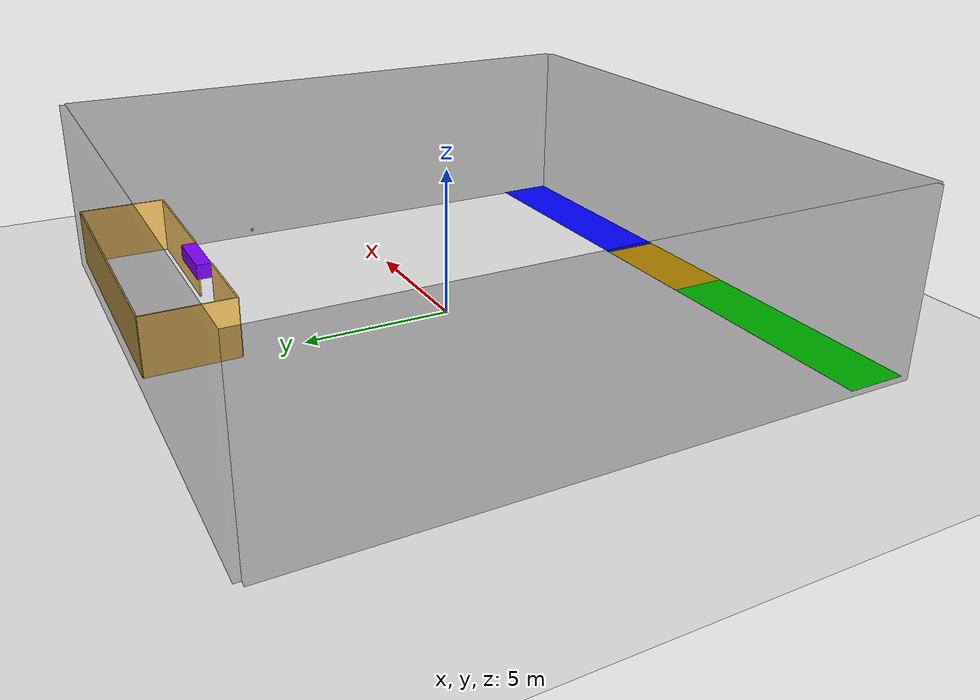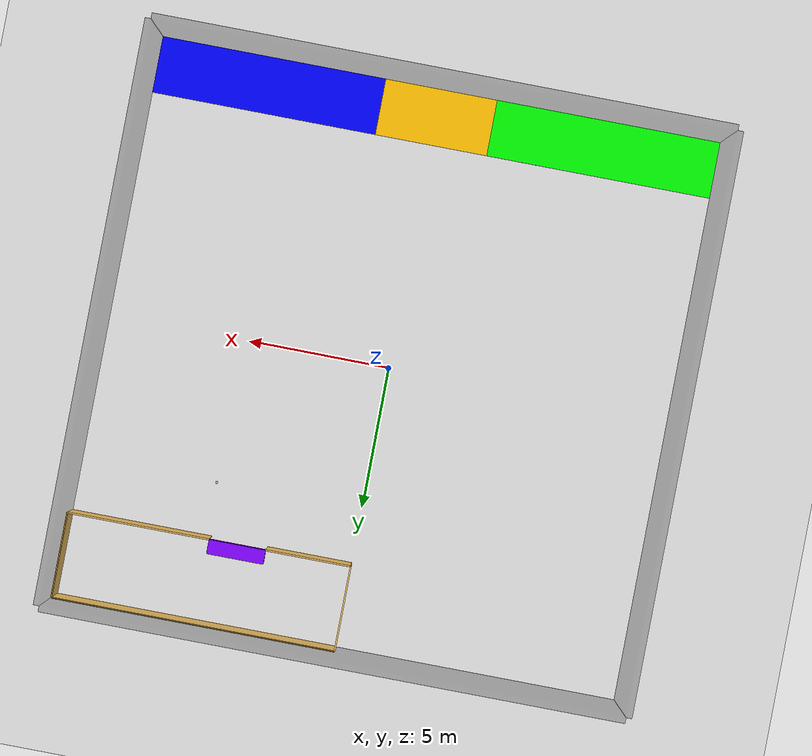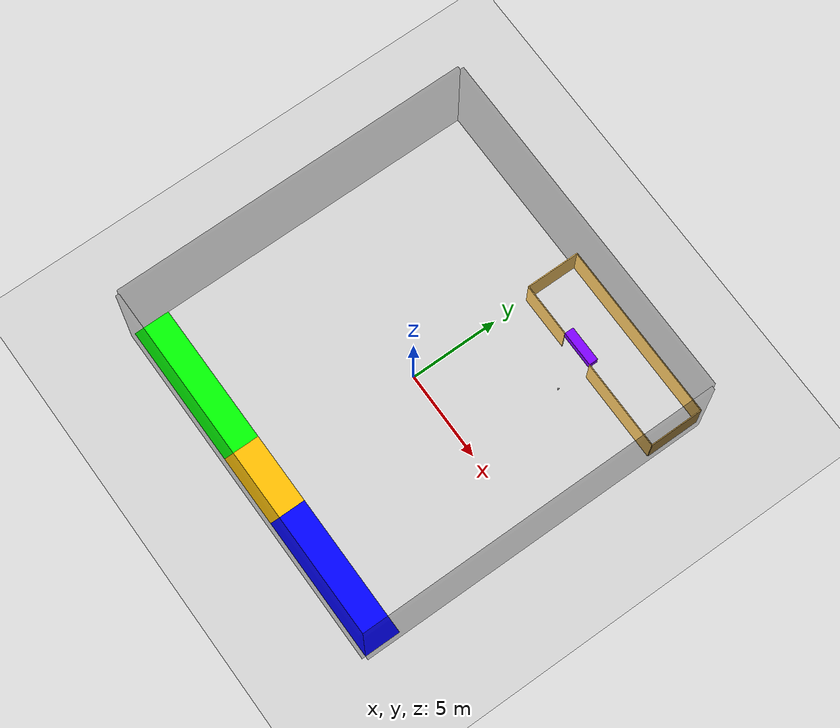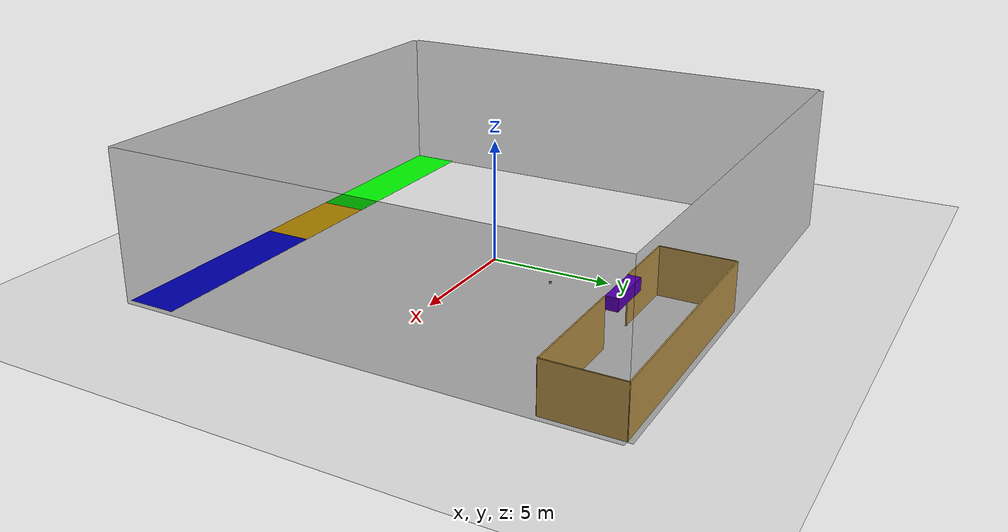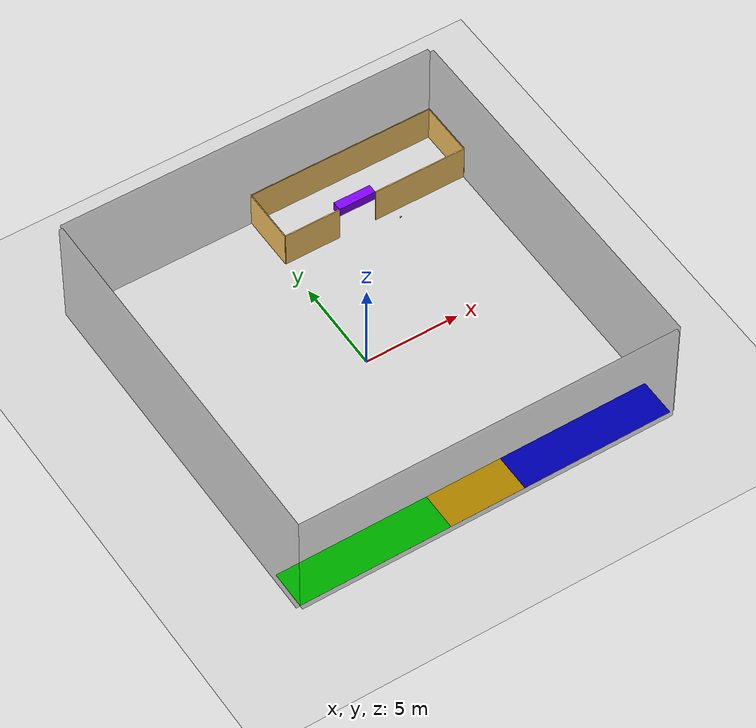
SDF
<?xml version="1.0"?>
<sdf version="1.11">
    <world name="safmc">

        <!-- Physics -->
        <physics name="1ms" type="ignored">
            <max_step_size>0.001</max_step_size>
            <real_time_factor>1.0</real_time_factor>
        </physics>

        <!-- Sun -->
        <light type="directional" name="sun">
            <cast_shadows>true</cast_shadows>
            <pose>0 0 10 0 0 0</pose>
            <diffuse>0.8 0.8 0.8 1</diffuse>
            <specular>0.2 0.2 0.2 1</specular>
            <attenuation>
                <range>1000</range>
                <constant>0.9</constant>
                <linear>0.01</linear>
                <quadratic>0.001</quadratic>
            </attenuation>
            <direction>-0.5 0.1 -0.9</direction>
        </light>

        <!-- Ground -->
        <model name="ground_plane">
            <static>true</static>
            <link name="link">
                <collision name="collision">
                    <geometry>
                        <plane>
                            <normal>0 0 1</normal>
                            <size>25.0 25.0</size>
                        </plane>
                    </geometry>
                </collision>
                <visual name="visual">
                    <geometry>
                        <plane>
                            <normal>0 0 1</normal>
                            <size>25.0 25.0</size>
                        </plane>
                    </geometry>
                    <material>
                        <ambient>0.8 0.8 0.8 1</ambient>
                        <diffuse>0.8 0.8 0.8 1</diffuse>
                        <specular>0.8 0.8 0.8 1</specular>
                    </material>
                </visual>
            </link>
        </model>

        <!-- Walls -->
        <include>
            <uri>file://models/wall</uri>
            <name>front_wall</name>
            <pose>0 -10.1 2.0 0 0 0</pose>
        </include>

        <include>
            <uri>file://models/wall</uri>
            <name>back_wall</name>
            <pose>0 10.1 2.0 0 0 0</pose>
        </include>

        <include>
            <uri>file://models/wall</uri>
            <name>left_wall</name>
            <pose>-10.1 0 2.0 0 0 1.570796</pose>
        </include>

        <include>
            <uri>file://models/wall</uri>
            <name>right_wall</name>
            <pose>10.1 0 2.0 0 0 1.570796</pose>
        </include>

        <include>
            <uri>file://models/lidar</uri>
            <name>lidar</name>
            <pose>5.1 5.0 2.0 0 0 1.570796</pose>
        </include>

        <!-- Launch Zone -->
        <model name="launch_zone">
            <pose>0 -9.0 0.001 0 0 0</pose>
            <static>true</static>
            <link name="link">
                <visual name="visual">
                    <geometry>
                        <plane>
                            <normal>0 0 1</normal>
                            <size>4.0 2.0</size>
                        </plane>
                    </geometry>
                    <material>
                        <ambient>1 0.75 0 1</ambient>
                        <diffuse>1 0.75 0 1</diffuse>
                        <specular>1 0.75 0 1</specular>
                    </material>
                </visual>
            </link>
        </model>

        <!-- Supply Zone -->
        <model name="green_supply_zone">
            <pose>-6.0 -9.0 0 0 0 0</pose>
            <static>true</static>
            <link name="link">
                <pose>0 0 0.001 0 0 0</pose>
                <visual name="visual">
                    <geometry>
                        <plane>
                            <normal>0 0 1</normal>
                            <size>8.0 2.0</size>
                        </plane>
                    </geometry>
                    <material>
                        <ambient>0 1 0 1</ambient>
                        <diffuse>0 1 0 1</diffuse>
                        <specular>0 1 0 1</specular>
                    </material>
                </visual>
            </link>
        </model>

        <model name="blue_supply_zone">
            <pose>6.0 -9.0 0 0 0 0</pose>
            <static>true</static>
            <link name="link">
                <pose>0 0 0.001 0 0 0</pose>
                <visual name="visual">
                    <geometry>
                        <plane>
                            <normal>0 0 1</normal>
                            <size>8.0 2.0</size>
                        </plane>
                    </geometry>
                    <material>
                        <ambient>0 0 1 1</ambient>
                        <diffuse>0 0 1 1</diffuse>
                        <specular>0 0 1 1</specular>
                    </material>
                </visual>
            </link>
        </model>

        <!-- Drop Zone -->
        <!-- generated by script -->

        <!-- Small Pillar Obstacles -->
        <!-- generated by script -->

        <!-- Large Pillar Obstacles -->
        <!-- generated by script -->

        <!-- Bonus Zone -->
        <include>
            <uri>file://models/bonus_zone</uri>
            <name>bonus_zone</name>
            <pose>5.0 8.5 1.0 0 0 0</pose>
        </include>

        <!-- Plugins -->
        <plugin
            filename="gz-sim-physics-system"
            name="gz::sim::systems::Physics">
        </plugin>
        <plugin
            filename="gz-sim-user-commands-system"
            name="gz::sim::systems::UserCommands">
        </plugin>
        <plugin
            filename="gz-sim-scene-broadcaster-system"
            name="gz::sim::systems::SceneBroadcaster">
        </plugin>
        <plugin
            filename="gz-sim-sensors-system"
            name="gz::sim::systems::Sensors">
            <render_engine>ogre2</render_engine>
        </plugin>

    </world>
</sdf>

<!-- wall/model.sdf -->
<sdf version="1.11">
    <model name="wall">
        <pose>0 0 2.0 0 0 0</pose>
        <static>true</static>

        <link name="link">

            <visual name="visual">
                <cast_shadows>false</cast_shadows>
                <pose>0 0 0 0 0 0</pose>
                <geometry>
                    <box>
                        <size>20.0 0.2 8.0</size>
                    </box>
                </geometry>
                <material>
                    <ambient>0 0 0 0.3</ambient>
                    <diffuse>0 0 0 0.3</diffuse>
                    <specular>0 0 0 0.3</specular>
                </material>
            </visual>

        </link>
    </model>
</sdf>

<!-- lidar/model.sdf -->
<sdf version="1.11">
    <model name="velodyne_hdl-32">

        <link name="top">
            <pose>0 0 0.095455 0 0 0</pose>

            <!-- !!!MUST!!! visuals and collision for gazebo visualization and physics-->
            <collision name="top_collision">
                <geometry>
                    <cylinder>
                        <radius>0.04267</radius>
                        <length>0.07357</length>
                    </cylinder>
                </geometry>
            </collision>

            <visual name="top_visual">
                <geometry>
                    <cylinder>
                        <radius>0.04267</radius>
                        <length>0.07357</length>
                    </cylinder>
                </geometry>
            </visual>

            <frame name="lidar_frame" attached_to='velodyne_hdl-32'>
                <pose>0 0 -0.004645 1.5707 0 0</pose>
            </frame>

            <!-- Lidar -->
            <sensor name='gpu_lidar' type='gpu_lidar'>

                <pose relative_to='lidar_frame'>0 0 0 0 0 0</pose>
                <!-- topic name specified here will show on "gz topic -l" -->
                <topic>lidar</topic>
                <update_rate>10</update_rate>

                <!-- Lidar config -->
                <ray>
                    <scan>

                        <!-- 1080 horizontal axis samples -->
                        <horizontal>
                            <samples>1080</samples>
                            <resolution>1</resolution>
                            <min_angle>-1.57079633</min_angle>
                            <max_angle>1.57079633</max_angle>
                        </horizontal>

                        <!-- 1 vertical axis sample -->
                        <vertical>
                            <samples>1</samples>
                            <resolution>0.01</resolution>
                            <min_angle>0</min_angle>
                            <max_angle>0</max_angle>
                        </vertical>
                    </scan>

                    <!-- Will only accept data in range 0.08 ~ 10.0 -->
                    <range>
                        <min>0.08</min>
                        <max>10.0</max>
                        <resolution>0.01</resolution>
                    </range>
                </ray>

                <always_on>1</always_on>
                <visualize>true</visualize>

            </sensor>

        </link>

    </model>
</sdf>

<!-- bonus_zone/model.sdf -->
<sdf version="1.11">
    <model name="bonus_zone">
        <pose>0 0 0 0 0 0</pose>
        <static>true</static>
        <link name="link">

            <collision name="bonus_zone_left_wall_collision">
                <pose>-5.0 0 0 0 0 0</pose>
                <geometry>
                    <box>
                        <size>0.05 3.0 2.0 0 0 0</size>
                    </box>
                </geometry>
            </collision>

            <collision name="bonus_zone_right_wall_collision">
                <pose>5.0 0 0 0 0 0</pose>
                <geometry>
                    <box>
                        <size>0.05 3.0 2.0 0 0 0</size>
                    </box>
                </geometry>
            </collision>

            <collision name="bonus_zone_front_wall_left_part_collision">
                <pose>-3.5 -1.5 0 0 0 0</pose>
                <geometry>
                    <box>
                        <size>3.0 0.05 2.0 0 0 0</size>
                    </box>
                </geometry>
            </collision>

            <collision name="bonus_zone_front_wall_right_part_collision">
                <pose>2.5 -1.5 0 0 0 0</pose>
                <geometry>
                    <box>
                        <size>5.0 0.05 2.0 0 0 0</size>
                    </box>
                </geometry>
            </collision>

            <collision name="bonus_zone_back_wall_collision">
                <pose>0 1.5 0 0 0 0</pose>
                <geometry>
                    <box>
                        <size>10.0 0.05 2.0 0 0 0</size>
                    </box>
                </geometry>
            </collision>

            <collision name="bonus_zone_high_beam_collision">
                <pose>-1.0 -1.25 0.75 0 0 0</pose>
                <geometry>
                    <box>
                        <size>2.0 0.5 0.5 0 0 0</size>
                    </box>
                </geometry>
            </collision>

            <visual name="bonus_zone_left_wall_visual">
                <pose>-5.0 0 0 0 0 0</pose>
                <geometry>
                    <box>
                        <size>0.05 3.0 2.0 0 0 0</size>
                    </box>
                </geometry>
                <material>
                    <ambient>1.0 0.8 0.4 1.0</ambient>
                    <diffuse>1.0 0.8 0.4 1.0</diffuse>
                    <specular>1.0 0.8 0.4 1.0</specular>
                </material>
            </visual>

            <visual name="bonus_zone_right_wall_visual">
                <pose>5.0 0 0 0 0 0</pose>
                <geometry>
                    <box>
                        <size>0.05 3.0 2.0 0 0 0</size>
                    </box>
                </geometry>
                <material>
                    <ambient>1.0 0.8 0.4 1.0</ambient>
                    <diffuse>1.0 0.8 0.4 1.0</diffuse>
                    <specular>1.0 0.8 0.4 1.0</specular>
                </material>
            </visual>

            <visual name="bonus_zone_front_wall_left_part_visual">
                <pose>-3.5 -1.5 0 0 0 0</pose>
                <geometry>
                    <box>
                        <size>3.0 0.05 2.0 0 0 0</size>
                    </box>
                </geometry>
                <material>
                    <ambient>1.0 0.8 0.4 1.0</ambient>
                    <diffuse>1.0 0.8 0.4 1.0</diffuse>
                    <specular>1.0 0.8 0.4 1.0</specular>
                </material>
            </visual>

            <visual name="bonus_zone_front_wall_right_part_visual">
                <pose>2.5 -1.5 0 0 0 0</pose>
                <geometry>
                    <box>
                        <size>5.0 0.05 2.0 0 0 0</size>
                    </box>
                </geometry>
                <material>
                    <ambient>1.0 0.8 0.4 1.0</ambient>
                    <diffuse>1.0 0.8 0.4 1.0</diffuse>
                    <specular>1.0 0.8 0.4 1.0</specular>
                </material>
            </visual>

            <visual name="bonus_zone_back_wall_visual">
                <pose>0 1.5 0 0 0 0</pose>
                <geometry>
                    <box>
                        <size>10.0 0.05 2.0 0 0 0</size>
                    </box>
                </geometry>
                <material>
                    <ambient>1.0 0.8 0.4 1.0</ambient>
                    <diffuse>1.0 0.8 0.4 1.0</diffuse>
                    <specular>1.0 0.8 0.4 1.0</specular>
                </material>
            </visual>

            <visual name="bonus_zone_high_beam_visual">
                <pose>-1.0 -1.25 0.75 0 0 0</pose>
                <geometry>
                    <box>
                        <size>2.0 0.5 0.5 0 0 0</size>
                    </box>
                </geometry>
                <material>
                    <ambient>0.5 0 1.0 1.0</ambient>
                    <diffuse>0.5 0 1.0 1.0</diffuse>
                    <specular>0.5 0 1.0 1.0</specular>
                </material>
            </visual>

        </link>
    </model>
</sdf>
